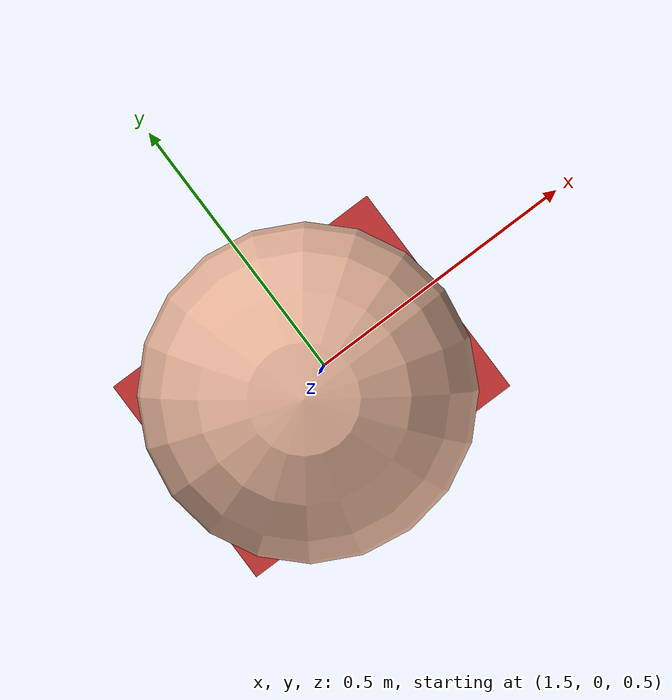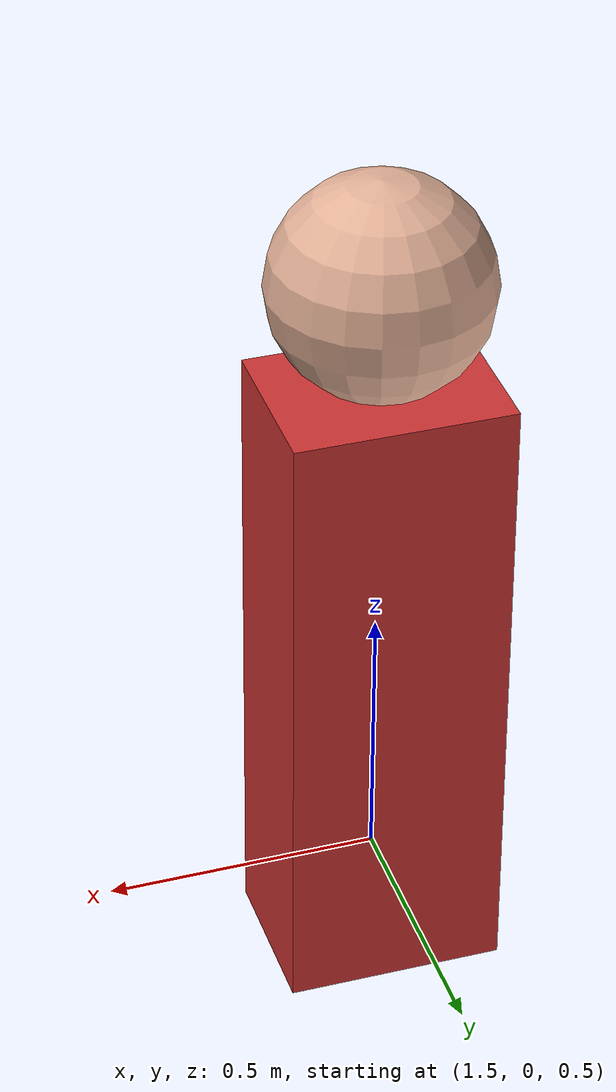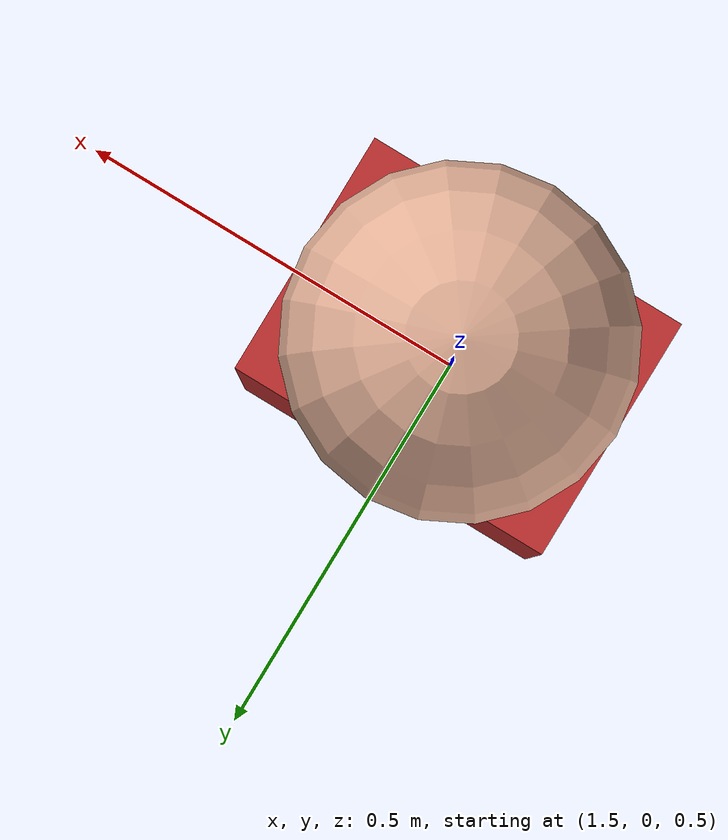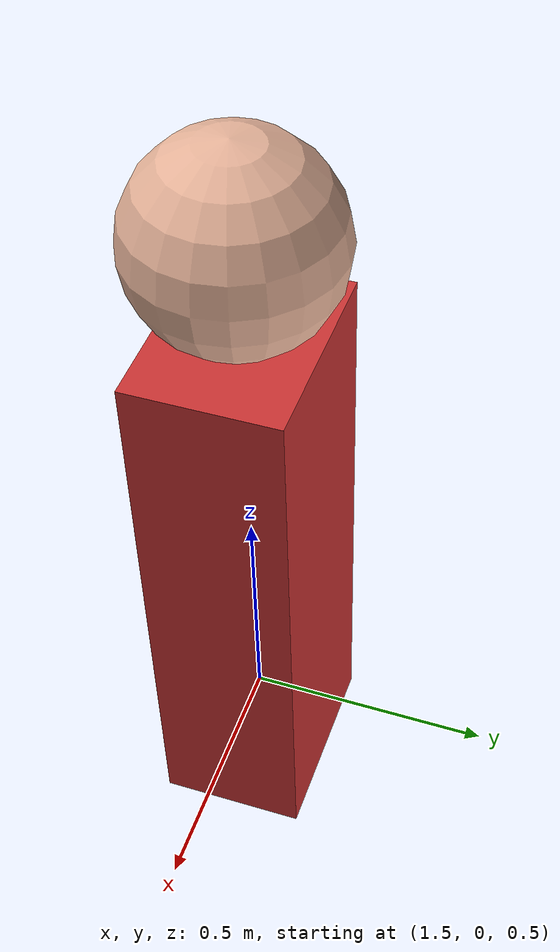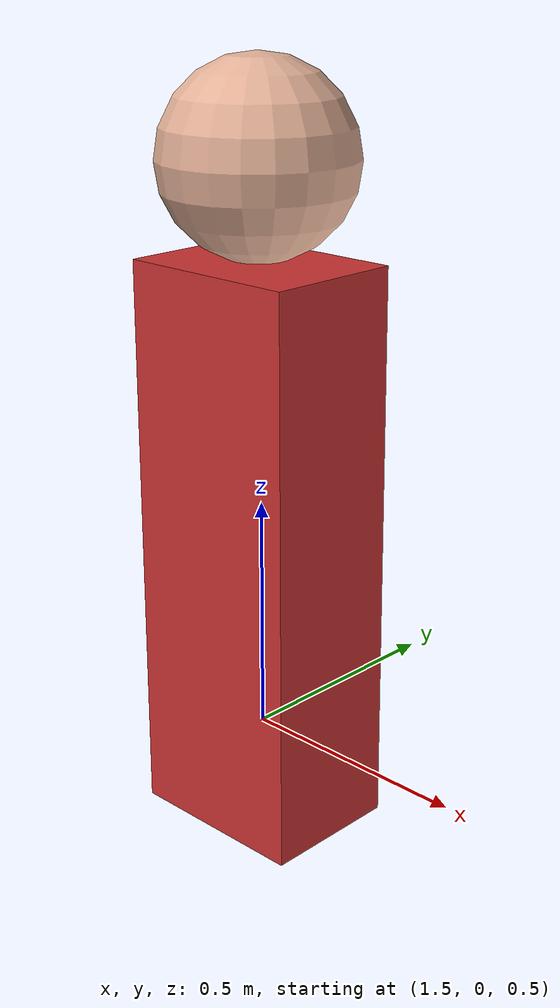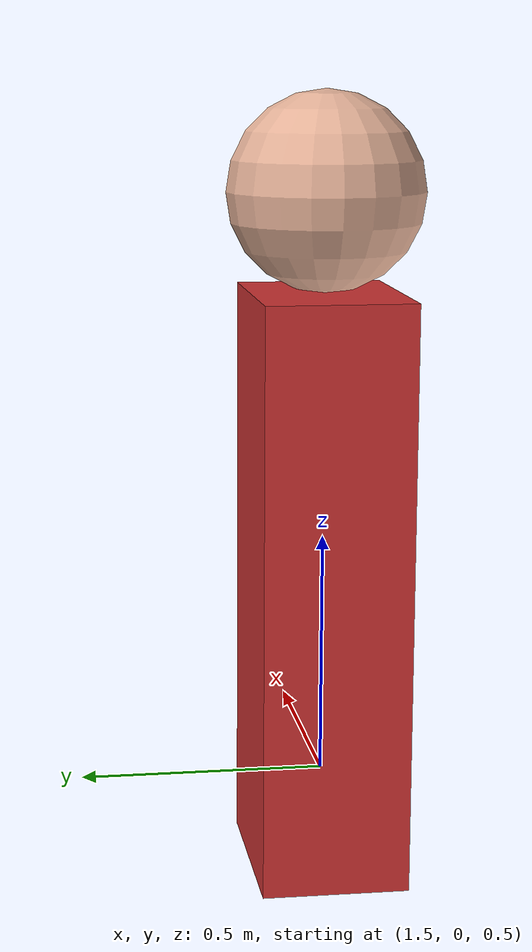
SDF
<?xml version="1.0"?>
<sdf version="1.6">
  <model name="static_person">
    <pose>1.5 0 0.9 0 0 0</pose>
    <!-- 身体主体 -->
    <link name="body">
      <inertial>
        <mass>60</mass>
        <inertia>
          <ixx>1</ixx><ixy>0</ixy><ixz>0</ixz>
          <iyy>1</iyy><iyz>0</iyz>
          <izz>1</izz>
        </inertia>
      </inertial>
      <collision name="body_collision">
        <geometry>
          <box><size>0.4 0.3 1.2</size></box>
        </geometry>
      </collision>
      <visual name="body_visual">
        <geometry>
          <box><size>0.4 0.3 1.2</size></box>
        </geometry>
        <material>
          <diffuse>0.8 0.2 0.2 1</diffuse>
        </material>
      </visual>
    </link>
    <!-- 头部 -->
    <link name="head">
      <pose>0 0 0.8 0 0 0</pose>
      <inertial>
        <mass>5</mass>
        <inertia>
          <ixx>0.1</ixx><ixy>0</ixy><ixz>0</ixz>
          <iyy>0.1</iyy><iyz>0</iyz>
          <izz>0.1</izz>
        </inertia>
      </inertial>
      <collision name="head_collision">
        <geometry>
          <sphere><radius>0.2</radius></sphere>
        </geometry>
      </collision>
      <visual name="head_visual">
        <geometry>
          <sphere><radius>0.2</radius></sphere>
        </geometry>
        <material>
          <diffuse>0.9 0.7 0.6 1</diffuse>
        </material>
      </visual>
    </link>
    <!-- 把头部和身体连起来 -->
    <joint name="head_body_joint" type="fixed">
      <parent>body</parent>
      <child>head</child>
      <pose>0 0 0.6 0 0 0</pose>
    </joint>
  </model>
</sdf>
